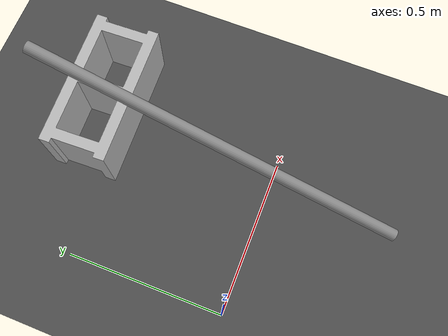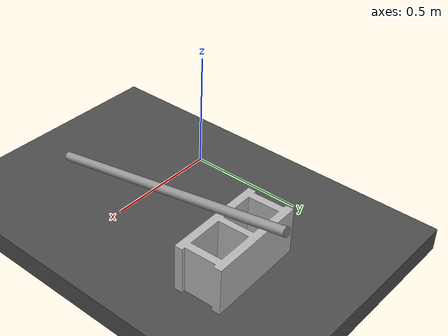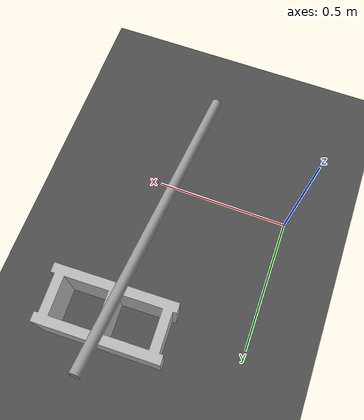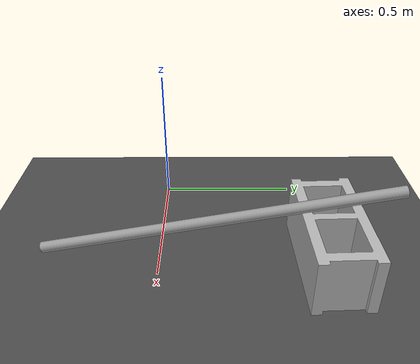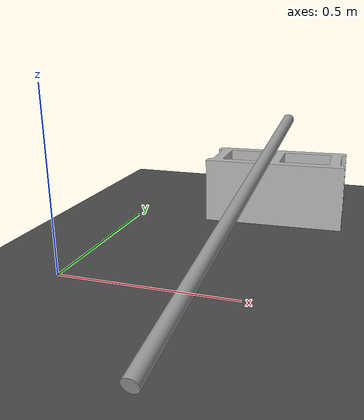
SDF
<sdf version="1.4">
 <world name="default">
  <light name="sun" type="directional">
   <pose>0 0 10 0 -0 0</pose>
   <diffuse>0.8 0.8 0.8 1</diffuse>
   <specular>0.2 0.2 0.2 1</specular>
   <attenuation>
    <range>1000</range>
    <constant>0.9</constant>
    <linear>0.01</linear>
    <quadratic>0.001</quadratic>
   </attenuation>
   <direction>-0.5 0.1 -0.9</direction>
  </light>
  <physics type="ode">
   <max_step_size>0.001</max_step_size>
   <real_time_factor>1</real_time_factor>
   <real_time_update_rate>1000</real_time_update_rate>
   <gravity>0 0 -9.8</gravity>
  </physics>
  <scene><ambient>0.4 0.4 0.4 1</ambient><background>0.7 0.7 0.7 1</background><shadows>1</shadows></scene>
  <spherical_coordinates>
   <surface_model>EARTH_WGS84</surface_model>
   <latitude_deg>0</latitude_deg>
   <longitude_deg>0</longitude_deg>
   <elevation>0</elevation>
   <heading_deg>0</heading_deg>
  </spherical_coordinates>
  <model name="cinder_block">
   <link name="link">
    <inertial>
     <pose>0 0 0.1016 0 -0 0</pose>
     <mass>5</mass>
     <inertia>
      <ixx>0.028705</ixx>
      <ixy>0</ixy>
      <iyy>0.073708</iyy>
      <ixz>0</ixz>
      <iyz>0</iyz>
      <izz>0.06908</izz>
     </inertia>
    </inertial>
    <visual name="visual">
     <geometry><mesh><uri>model://cinder_block/meshes/cinder_block.dae</uri></mesh></geometry>
    </visual>
    <collision name="left">
     <pose>0 -0.08465 0.1016 0 -0 0</pose>
     <geometry><box><size>0.43495 0.0339 0.2032</size></box></geometry>
     <surface>
      <contact><ode><max_vel>0.1</max_vel><min_depth>0.001</min_depth></ode></contact>
      <friction><ode><mu>1</mu><mu2>1</mu2></ode></friction>
     </surface>
    </collision>
    <collision name="right">
     <pose>0 0.08465 0.1016 0 -0 0</pose>
     <geometry><box><size>0.43495 0.0339 0.2032</size></box></geometry>
     <surface>
      <contact><ode><max_vel>0.1</max_vel><min_depth>0.001</min_depth></ode></contact>
      <friction><ode><mu>1</mu><mu2>1</mu2></ode></friction>
     </surface>
    </collision>
    <collision name="front">
     <pose>0.18625 0 0.1016 0 -0 0</pose>
     <geometry><box><size>0.0339 0.1354 0.203</size></box></geometry>
     <surface>
      <contact><ode><max_vel>0.1</max_vel><min_depth>0.001</min_depth></ode></contact>
      <friction><ode><mu>1</mu><mu2>1</mu2></ode></friction>
     </surface>
    </collision>
    <collision name="middle">
     <pose>0 0 0.1016 0 -0 0</pose>
     <geometry><box><size>0.0339 0.1354 0.203</size></box></geometry>
     <surface>
      <contact><ode><max_vel>0.1</max_vel><min_depth>0.001</min_depth></ode></contact>
      <friction><ode><mu>1</mu><mu2>1</mu2></ode></friction>
     </surface>
    </collision>
    <collision name="back">
     <pose>-0.18625 0 0.1016 0 -0 0</pose>
     <geometry><box><size>0.0339 0.1354 0.203</size></box></geometry>
     <surface>
      <contact><ode><max_vel>0.1</max_vel><min_depth>0.001</min_depth></ode></contact>
      <friction><ode><mu>1</mu><mu2>1</mu2></ode></friction>
     </surface>
    </collision>
    <velocity_decay><linear>0</linear><angular>0</angular></velocity_decay>
   </link>
   <pose>0.476365 0.572612 0.019913 0.001754 -0.000236 0.034692</pose>
   <static>0</static>
  </model>
  <model name="asphalt_plane">
   <static>1</static>
   <link name="link">
    <collision name="collision"><geometry><box><size>20 20 0.1</size></box></geometry></collision>
    <visual name="visual">
     <cast_shadows>0</cast_shadows>
     <geometry><box><size>20 20 0.1</size></box></geometry>
     <material>
      <script>
       <uri>model://asphalt_plane/materials/scripts</uri>
       <uri>model://asphalt_plane/materials/textures</uri>
       <name>vrc/asphalt</name>
      </script>
     </material>
    </visual>
    <velocity_decay><linear>0</linear><angular>0</angular></velocity_decay>
   </link>
   <pose>-0.00306 -0.041009 -0.02886 0 -0 0</pose>
  </model>
  <model name="unit_cylinder_1">
   <pose>0.441456 0.189062 0.177628 1.79813 0.022543 -0.048384</pose>
   <link name="link">
    <inertial>
     <mass>1</mass>
     <inertia><ixx>1</ixx><ixy>0</ixy><ixz>0</ixz><iyy>1</iyy><iyz>0</iyz><izz>1</izz></inertia>
    </inertial>
    <collision name="collision">
     <geometry><cylinder><radius>0.0192304</radius><length>1.22272</length></cylinder></geometry>
    </collision>
    <visual name="visual">
     <geometry><cylinder><radius>0.0192304</radius><length>1.22272</length></cylinder></geometry>
     <material>
      <script><uri>file://media/materials/scripts/gazebo.material</uri><name>Gazebo/Grey</name></script>
     </material>
    </visual>
    <velocity_decay><linear>0</linear><angular>0</angular></velocity_decay>
   </link>
   <static>0</static>
  </model>
 </world>
</sdf>
